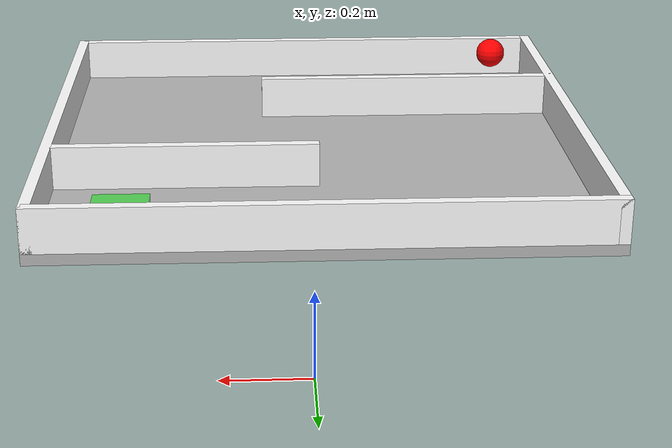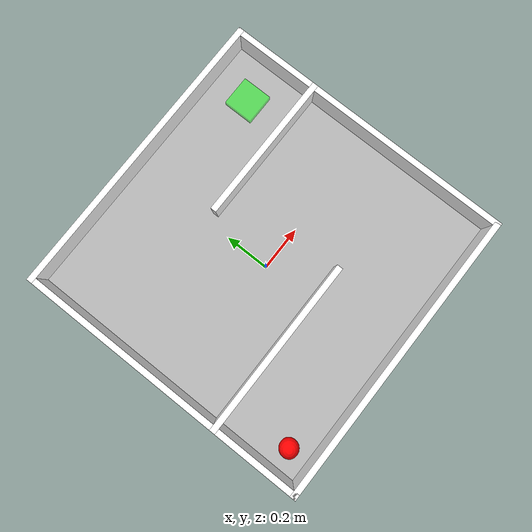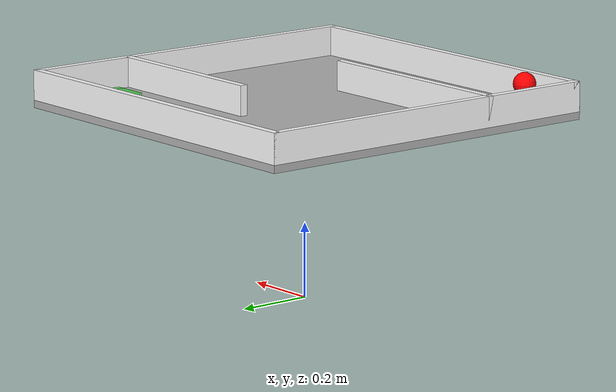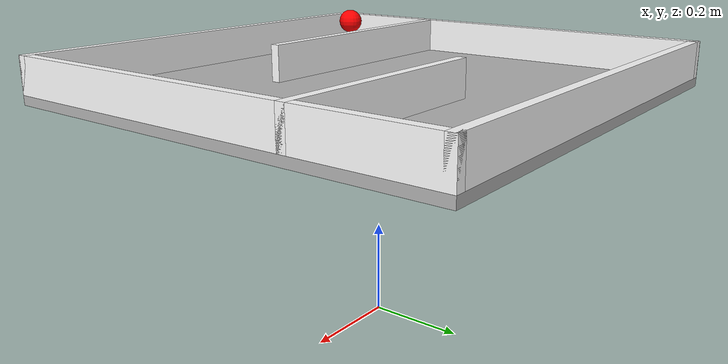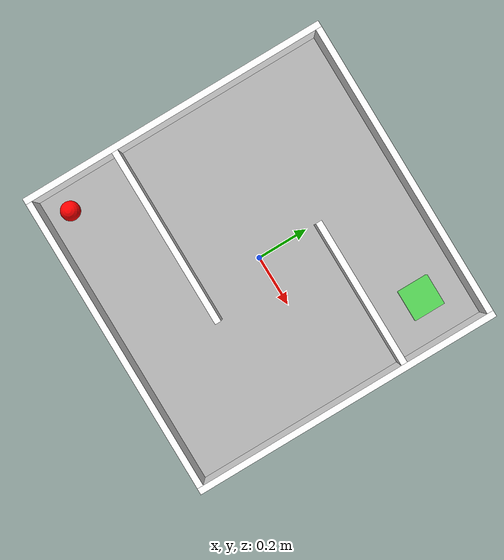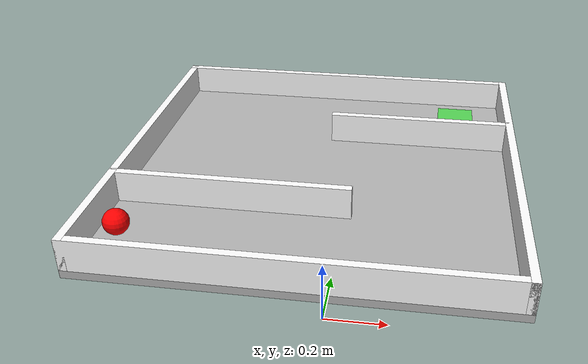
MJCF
<mujoco model="labyrinth">
    <compiler angle="degree"/>
    <option timestep="0.02"/>

    <!-- World -->
    <worldbody>
        <!-- Board -->
        <body name="board" pos="0 0 0.5">
            <inertial pos="0 0 0" mass="5" diaginertia="1 1 1"/>
            <joint name="tilt_x" pos="0 0 0" axis="1 0 0" range="-3 3" damping="10"/>
            <joint name="tilt_y" pos="0 0 0" axis="0 1 0" range="-3 3" damping="10"/>
            <geom name="board_geom" type="box" size="0.5 0.5 0.01" rgba="0.7 0.7 0.7 1"/>

            <!-- Walls -->
            <geom name="wall_left" type="box" size="0.01 0.5 0.04" pos="-0.49 0 0.05" rgba="255 255 255 1" mass="0"/>
            <geom name="wall_right" type="box" size="0.01 0.5 0.04" pos="0.49 0 0.05" rgba="255 255 255 1" mass="0"/>
            <geom name="wall_top" type="box" size="0.5 0.01 0.04" pos="0 0.49 0.05" rgba="255 255 255 1" mass="0"/>
            <geom name="wall_bottom" type="box" size="0.5 0.01 0.04" pos="0 -0.49 0.05" rgba="255 255 255 1" mass="0"/>
            <geom name="wall_maze1" type="box" size="0.25 0.01 0.04" pos="0.25 0.20 0.05" rgba="255 255 255 1" mass="0"/>
            <geom name="wall_maze2" type="box" size="0.30 0.01 0.04" pos="-0.20 -0.20 0.05" rgba="255 255 255 1" mass="0"/>

            <site name="sensor_plate_site" pos="0.35 0.35 0.025" type="box" size="0.05 0.05 0.01" rgba="0 1 0 0.5"/>
        </body>

        <!-- Ball in Lower Left Corner-->
        <body name="ball" pos="-0.4 -0.4 0.58">
            <joint name="free_ball" type="free"/>
            <geom name="ball_geom" type="sphere" size="0.03" mass="0.01" rgba="1 0 0 1"/>
        </body>

        <!-- Camera -->
        <camera name="top_view" pos="0 0 1.75" xyaxes="1 0 0 0 1 0"/>
    </worldbody>

    <sensor>
        <touch name="sensor_touch" site="sensor_plate_site"/>
    </sensor>

    <!-- Actuators (Instant Tilt) -->
    <actuator>
        <motor name="tilt_x_actuator" joint="tilt_x" ctrlrange="-1 1"/>
        <motor name="tilt_y_actuator" joint="tilt_y" ctrlrange="-1 1"/>
    </actuator>
</mujoco>
